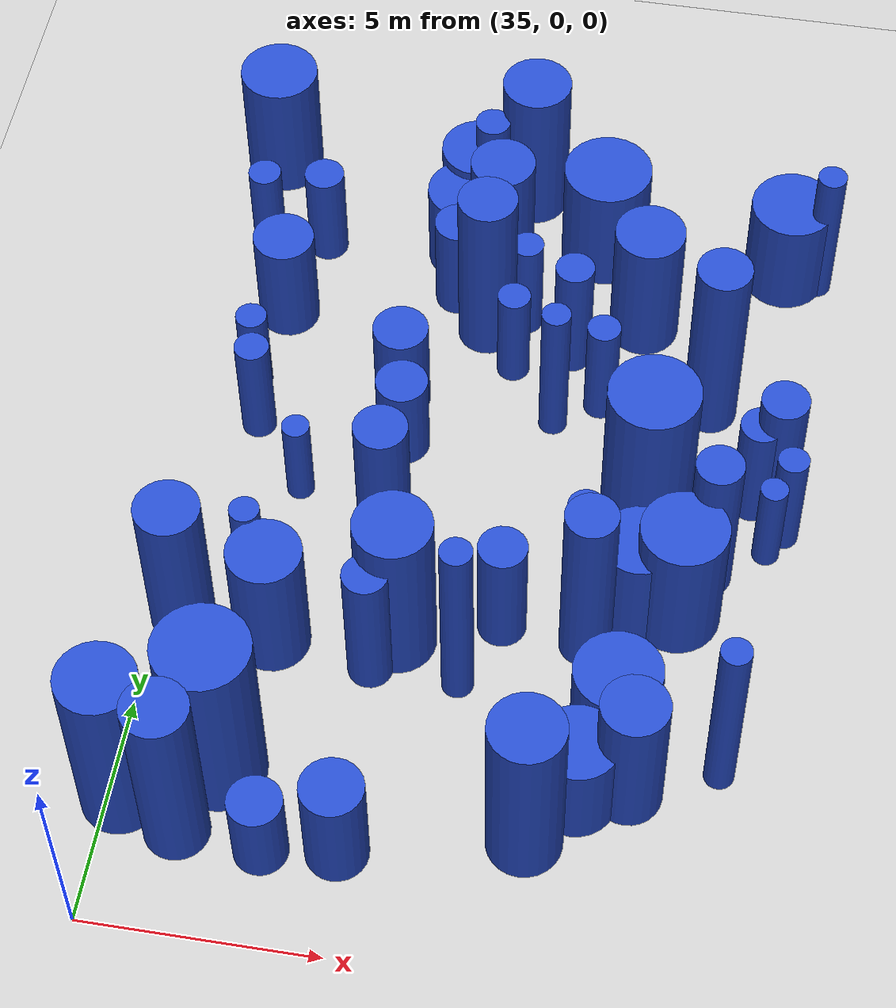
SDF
<sdf version="1.6">
 <world name="default">
  <model name="ground_plane">
   <static>1</static>
   <link name="link">
    <collision name="collision">
     <geometry><plane><normal>0 0 1</normal><size>100 100</size></plane></geometry>
     <surface><friction><ode><mu>100</mu><mu2>50</mu2></ode></friction></surface>
    </collision>
    <visual name="visual">
     <cast_shadows>0</cast_shadows>
     <geometry><plane><normal>0 0 1</normal><size>100 100</size></plane></geometry>
     <material>
      <script><uri>file://media/materials/scripts/gazebo.material</uri><name>Gazebo/Grey</name></script>
     </material>
    </visual>
   </link>
  </model>
  <model name="4">
   <static>0</static>
   <link name="link">
    <inertial>
     <mass>2</mass>
     <inertia><ixx>3.99199</ixx><ixy>0</ixy><ixz>0</ixz><iyy>3.99199</iyy><iyz>0</iyz><izz>0.466161</izz></inertia>
    </inertial>
    <collision name="collision">
     <geometry><cylinder><length>4.74905</length><radius>0.68276</radius></cylinder></geometry>
     <surface><contact><collide_without_contact>1</collide_without_contact></contact></surface>
    </collision>
    <visual name="visual">
     <geometry><cylinder><length>4.74905</length><radius>0.68276</radius></cylinder></geometry>
     <material>
      <script><uri>file://media/materials/scripts/gazebo.material</uri><name>Gazebo/Blue</name></script>
     </material>
    </visual>
    <gravity>0</gravity>
   </link>
   <pose>36.5583 2.27425 2.37452 0 -0 0</pose>
  </model>
  <model name="10">
   <static>0</static>
   <link name="link">
    <inertial>
     <mass>2</mass>
     <inertia>
      <ixx>0.892334</ixx>
      <ixy>0</ixy>
      <ixz>0</ixz>
      <iyy>0.892334</iyy>
      <iyz>0</iyz>
      <izz>0.0903005</izz>
     </inertia>
    </inertial>
    <collision name="collision">
     <geometry><cylinder><length>2.25457</length><radius>0.3005</radius></cylinder></geometry>
     <surface><contact><collide_without_contact>1</collide_without_contact></contact></surface>
    </collision>
    <visual name="visual">
     <geometry><cylinder><length>2.25457</length><radius>0.3005</radius></cylinder></geometry>
     <material>
      <script><uri>file://media/materials/scripts/gazebo.material</uri><name>Gazebo/Blue</name></script>
     </material>
    </visual>
    <gravity>0</gravity>
   </link>
   <pose>37.2761 10.9514 1.12729 0 -0 0</pose>
  </model>
  <model name="17">
   <static>0</static>
   <link name="link">
    <inertial>
     <mass>2</mass>
     <inertia><ixx>2.81626</ixx><ixy>0</ixy><ixz>0</ixz><iyy>2.81626</iyy><iyz>0</iyz><izz>0.482913</izz></inertia>
    </inertial>
    <collision name="collision">
     <geometry><cylinder><length>3.9305</length><radius>0.694919</radius></cylinder></geometry>
     <surface><contact><collide_without_contact>1</collide_without_contact></contact></surface>
    </collision>
    <visual name="visual">
     <geometry><cylinder><length>3.9305</length><radius>0.694919</radius></cylinder></geometry>
     <material>
      <script><uri>file://media/materials/scripts/gazebo.material</uri><name>Gazebo/Blue</name></script>
     </material>
    </visual>
    <gravity>0</gravity>
   </link>
   <pose>35.5044 7.28574 1.96525 0 -0 0</pose>
  </model>
  <model name="22">
   <static>0</static>
   <link name="link">
    <inertial>
     <mass>2</mass>
     <inertia><ixx>1.35363</ixx><ixy>0</ixy><ixz>0</ixz><iyy>1.35363</iyy><iyz>0</iyz><izz>0.709963</izz></inertia>
    </inertial>
    <collision name="collision">
     <geometry><cylinder><length>2.44783</length><radius>0.842593</radius></cylinder></geometry>
     <surface><contact><collide_without_contact>1</collide_without_contact></contact></surface>
    </collision>
    <visual name="visual">
     <geometry><cylinder><length>2.44783</length><radius>0.842593</radius></cylinder></geometry>
     <material>
      <script><uri>file://media/materials/scripts/gazebo.material</uri><name>Gazebo/Blue</name></script>
     </material>
    </visual>
    <gravity>0</gravity>
   </link>
   <pose>39.8297 19.3697 1.22391 0 -0 0</pose>
  </model>
  <model name="33">
   <static>0</static>
   <link name="link">
    <inertial>
     <mass>2</mass>
     <inertia><ixx>3.79607</ixx><ixy>0</ixy><ixz>0</ixz><iyy>3.79607</iyy><iyz>0</iyz><izz>0.307208</izz></inertia>
    </inertial>
    <collision name="collision">
     <geometry><cylinder><length>4.67491</length><radius>0.554264</radius></cylinder></geometry>
     <surface><contact><collide_without_contact>1</collide_without_contact></contact></surface>
    </collision>
    <visual name="visual">
     <geometry><cylinder><length>4.67491</length><radius>0.554264</radius></cylinder></geometry>
     <material>
      <script><uri>file://media/materials/scripts/gazebo.material</uri><name>Gazebo/Blue</name></script>
     </material>
    </visual>
    <gravity>0</gravity>
   </link>
   <pose>43.9821 7.96842 2.33746 0 -0 0</pose>
  </model>
  <model name="37">
   <static>0</static>
   <link name="link">
    <inertial>
     <mass>2</mass>
     <inertia><ixx>4.51841</ixx><ixy>0</ixy><ixz>0</ixz><iyy>4.51841</iyy><iyz>0</iyz><izz>0.944518</izz></inertia>
    </inertial>
    <collision name="collision">
     <geometry><cylinder><length>4.92716</length><radius>0.971863</radius></cylinder></geometry>
     <surface><contact><collide_without_contact>1</collide_without_contact></contact></surface>
    </collision>
    <visual name="visual">
     <geometry><cylinder><length>4.92716</length><radius>0.971863</radius></cylinder></geometry>
     <material>
      <script><uri>file://media/materials/scripts/gazebo.material</uri><name>Gazebo/Blue</name></script>
     </material>
    </visual>
    <gravity>0</gravity>
   </link>
   <pose>44.825 11.0247 2.46358 0 -0 0</pose>
  </model>
  <model name="40">
   <static>0</static>
   <link name="link">
    <inertial>
     <mass>2</mass>
     <inertia><ixx>4.04443</ixx><ixy>0</ixy><ixz>0</ixz><iyy>4.04443</iyy><iyz>0</iyz><izz>0.995933</izz></inertia>
    </inertial>
    <collision name="collision">
     <geometry><cylinder><length>4.61289</length><radius>0.997965</radius></cylinder></geometry>
     <surface><contact><collide_without_contact>1</collide_without_contact></contact></surface>
    </collision>
    <visual name="visual">
     <geometry><cylinder><length>4.61289</length><radius>0.997965</radius></cylinder></geometry>
     <material>
      <script><uri>file://media/materials/scripts/gazebo.material</uri><name>Gazebo/Blue</name></script>
     </material>
    </visual>
    <gravity>0</gravity>
   </link>
   <pose>37.0797 3.78821 2.30645 0 -0 0</pose>
  </model>
  <model name="45">
   <static>0</static>
   <link name="link">
    <inertial>
     <mass>2</mass>
     <inertia><ixx>1.36639</ixx><ixy>0</ixy><ixz>0</ixz><iyy>1.36639</iyy><iyz>0</iyz><izz>0.427302</izz></inertia>
    </inertial>
    <collision name="collision">
     <geometry><cylinder><length>2.62991</length><radius>0.653683</radius></cylinder></geometry>
     <surface><contact><collide_without_contact>1</collide_without_contact></contact></surface>
    </collision>
    <visual name="visual">
     <geometry><cylinder><length>2.62991</length><radius>0.653683</radius></cylinder></geometry>
     <material>
      <script><uri>file://media/materials/scripts/gazebo.material</uri><name>Gazebo/Blue</name></script>
     </material>
    </visual>
    <gravity>0</gravity>
   </link>
   <pose>39.8121 2.31165 1.31496 0 -0 0</pose>
  </model>
  <model name="50">
   <static>0</static>
   <link name="link">
    <inertial>
     <mass>2</mass>
     <inertia>
      <ixx>0.992342</ixx>
      <ixy>0</ixy>
      <ixz>0</ixz>
      <iyy>0.992342</iyy>
      <iyz>0</iyz>
      <izz>0.0875629</izz>
     </inertia>
    </inertial>
    <collision name="collision">
     <geometry><cylinder><length>2.38566</length><radius>0.29591</radius></cylinder></geometry>
     <surface><contact><collide_without_contact>1</collide_without_contact></contact></surface>
    </collision>
    <visual name="visual">
     <geometry><cylinder><length>2.38566</length><radius>0.29591</radius></cylinder></geometry>
     <material>
      <script><uri>file://media/materials/scripts/gazebo.material</uri><name>Gazebo/Blue</name></script>
     </material>
    </visual>
    <gravity>0</gravity>
   </link>
   <pose>47.4918 10.8681 1.19283 0 -0 0</pose>
  </model>
  <model name="55">
   <static>0</static>
   <link name="link">
    <inertial>
     <mass>2</mass>
     <inertia><ixx>1.92255</ixx><ixy>0</ixy><ixz>0</ixz><iyy>1.92255</iyy><iyz>0</iyz><izz>0.101941</izz></inertia>
    </inertial>
    <collision name="collision">
     <geometry><cylinder><length>3.35104</length><radius>0.319282</radius></cylinder></geometry>
     <surface><contact><collide_without_contact>1</collide_without_contact></contact></surface>
    </collision>
    <visual name="visual">
     <geometry><cylinder><length>3.35104</length><radius>0.319282</radius></cylinder></geometry>
     <material>
      <script><uri>file://media/materials/scripts/gazebo.material</uri><name>Gazebo/Blue</name></script>
     </material>
    </visual>
    <gravity>0</gravity>
   </link>
   <pose>36.9158 7.90245 1.67552 0 -0 0</pose>
  </model>
  <model name="71">
   <static>0</static>
   <link name="link">
    <inertial>
     <mass>2</mass>
     <inertia><ixx>1.48642</ixx><ixy>0</ixy><ixz>0</ixz><iyy>1.48642</iyy><iyz>0</iyz><izz>0.886168</izz></inertia>
    </inertial>
    <collision name="collision">
     <geometry><cylinder><length>2.50201</length><radius>0.941365</radius></cylinder></geometry>
     <surface><contact><collide_without_contact>1</collide_without_contact></contact></surface>
    </collision>
    <visual name="visual">
     <geometry><cylinder><length>2.50201</length><radius>0.941365</radius></cylinder></geometry>
     <material>
      <script><uri>file://media/materials/scripts/gazebo.material</uri><name>Gazebo/Blue</name></script>
     </material>
    </visual>
    <gravity>0</gravity>
   </link>
   <pose>47.1391 18.75 1.251 0 -0 0</pose>
  </model>
  <model name="77">
   <static>0</static>
   <link name="link">
    <inertial>
     <mass>2</mass>
     <inertia><ixx>2.23167</ixx><ixy>0</ixy><ixz>0</ixz><iyy>2.23167</iyy><iyz>0</iyz><izz>0.266125</izz></inertia>
    </inertial>
    <collision name="collision">
     <geometry><cylinder><length>3.54847</length><radius>0.515873</radius></cylinder></geometry>
     <surface><contact><collide_without_contact>1</collide_without_contact></contact></surface>
    </collision>
    <visual name="visual">
     <geometry><cylinder><length>3.54847</length><radius>0.515873</radius></cylinder></geometry>
     <material>
      <script><uri>file://media/materials/scripts/gazebo.material</uri><name>Gazebo/Blue</name></script>
     </material>
    </visual>
    <gravity>0</gravity>
   </link>
   <pose>47.4817 12.3314 1.77423 0 -0 0</pose>
  </model>
  <model name="84">
   <static>0</static>
   <link name="link">
    <inertial>
     <mass>2</mass>
     <inertia><ixx>1.69422</ixx><ixy>0</ixy><ixz>0</ixz><iyy>1.69422</iyy><iyz>0</iyz><izz>0.186566</izz></inertia>
    </inertial>
    <collision name="collision">
     <geometry><cylinder><length>3.09929</length><radius>0.431933</radius></cylinder></geometry>
     <surface><contact><collide_without_contact>1</collide_without_contact></contact></surface>
    </collision>
    <visual name="visual">
     <geometry><cylinder><length>3.09929</length><radius>0.431933</radius></cylinder></geometry>
     <material>
      <script><uri>file://media/materials/scripts/gazebo.material</uri><name>Gazebo/Blue</name></script>
     </material>
    </visual>
    <gravity>0</gravity>
   </link>
   <pose>42.5989 15.5785 1.54964 0 -0 0</pose>
  </model>
  <model name="86">
   <static>0</static>
   <link name="link">
    <inertial>
     <mass>2</mass>
     <inertia><ixx>1.2636</ixx><ixy>0</ixy><ixz>0</ixz><iyy>1.2636</iyy><iyz>0</iyz><izz>0.128524</izz></inertia>
    </inertial>
    <collision name="collision">
     <geometry><cylinder><length>2.68254</length><radius>0.358502</radius></cylinder></geometry>
     <surface><contact><collide_without_contact>1</collide_without_contact></contact></surface>
    </collision>
    <visual name="visual">
     <geometry><cylinder><length>2.68254</length><radius>0.358502</radius></cylinder></geometry>
     <material>
      <script><uri>file://media/materials/scripts/gazebo.material</uri><name>Gazebo/Blue</name></script>
     </material>
    </visual>
    <gravity>0</gravity>
   </link>
   <pose>41.425 16.4363 1.34127 0 -0 0</pose>
  </model>
  <model name="99">
   <static>0</static>
   <link name="link">
    <inertial>
     <mass>2</mass>
     <inertia><ixx>3.32285</ixx><ixy>0</ixy><ixz>0</ixz><iyy>3.32285</iyy><iyz>0</iyz><izz>0.693865</izz></inertia>
    </inertial>
    <collision name="collision">
     <geometry><cylinder><length>4.22557</length><radius>0.832985</radius></cylinder></geometry>
     <surface><contact><collide_without_contact>1</collide_without_contact></contact></surface>
    </collision>
    <visual name="visual">
     <geometry><cylinder><length>4.22557</length><radius>0.832985</radius></cylinder></geometry>
     <material>
      <script><uri>file://media/materials/scripts/gazebo.material</uri><name>Gazebo/Blue</name></script>
     </material>
    </visual>
    <gravity>0</gravity>
   </link>
   <pose>40.0849 7.42865 2.11279 0 -0 0</pose>
  </model>
  <model name="105">
   <static>0</static>
   <link name="link">
    <inertial>
     <mass>2</mass>
     <inertia><ixx>3.18059</ixx><ixy>0</ixy><ixz>0</ixz><iyy>3.18059</iyy><iyz>0</iyz><izz>0.147902</izz></inertia>
    </inertial>
    <collision name="collision">
     <geometry><cylinder><length>4.31739</length><radius>0.384581</radius></cylinder></geometry>
     <surface><contact><collide_without_contact>1</collide_without_contact></contact></surface>
    </collision>
    <visual name="visual">
     <geometry><cylinder><length>4.31739</length><radius>0.384581</radius></cylinder></geometry>
     <material>
      <script><uri>file://media/materials/scripts/gazebo.material</uri><name>Gazebo/Blue</name></script>
     </material>
    </visual>
    <gravity>0</gravity>
   </link>
   <pose>43.8154 8.45253 2.15869 0 -0 0</pose>
  </model>
  <model name="106">
   <static>0</static>
   <link name="link">
    <inertial>
     <mass>2</mass>
     <inertia><ixx>1.19386</ixx><ixy>0</ixy><ixz>0</ixz><iyy>1.19386</iyy><iyz>0</iyz><izz>0.72502</izz></inertia>
    </inertial>
    <collision name="collision">
     <geometry><cylinder><length>2.23341</length><radius>0.851481</radius></cylinder></geometry>
     <surface><contact><collide_without_contact>1</collide_without_contact></contact></surface>
    </collision>
    <visual name="visual">
     <geometry><cylinder><length>2.23341</length><radius>0.851481</radius></cylinder></geometry>
     <material>
      <script><uri>file://media/materials/scripts/gazebo.material</uri><name>Gazebo/Blue</name></script>
     </material>
    </visual>
    <gravity>0</gravity>
   </link>
   <pose>39.7044 18.2429 1.1167 0 -0 0</pose>
  </model>
  <model name="117">
   <static>0</static>
   <link name="link">
    <inertial>
     <mass>2</mass>
     <inertia><ixx>1.92344</ixx><ixy>0</ixy><ixz>0</ixz><iyy>1.92344</iyy><iyz>0</iyz><izz>0.539178</izz></inertia>
    </inertial>
    <collision name="collision">
     <geometry><cylinder><length>3.1501</length><radius>0.734287</radius></cylinder></geometry>
     <surface><contact><collide_without_contact>1</collide_without_contact></contact></surface>
    </collision>
    <visual name="visual">
     <geometry><cylinder><length>3.1501</length><radius>0.734287</radius></cylinder></geometry>
     <material>
      <script><uri>file://media/materials/scripts/gazebo.material</uri><name>Gazebo/Blue</name></script>
     </material>
    </visual>
    <gravity>0</gravity>
   </link>
   <pose>40.5549 18.3525 1.57505 0 -0 0</pose>
  </model>
  <model name="121">
   <static>0</static>
   <link name="link">
    <inertial>
     <mass>2</mass>
     <inertia><ixx>4.1766</ixx><ixy>0</ixy><ixz>0</ixz><iyy>4.1766</iyy><iyz>0</iyz><izz>0.356633</izz></inertia>
    </inertial>
    <collision name="collision">
     <geometry><cylinder><length>4.89793</length><radius>0.597187</radius></cylinder></geometry>
     <surface><contact><collide_without_contact>1</collide_without_contact></contact></surface>
    </collision>
    <visual name="visual">
     <geometry><cylinder><length>4.89793</length><radius>0.597187</radius></cylinder></geometry>
     <material>
      <script><uri>file://media/materials/scripts/gazebo.material</uri><name>Gazebo/Blue</name></script>
     </material>
    </visual>
    <gravity>0</gravity>
   </link>
   <pose>45.871 14.5136 2.44896 0 -0 0</pose>
  </model>
  <model name="128">
   <static>0</static>
   <link name="link">
    <inertial>
     <mass>2</mass>
     <inertia>
      <ixx>0.991401</ixx>
      <ixy>0</ixy>
      <ixz>0</ixz>
      <iyy>0.991401</iyy>
      <iyz>0</iyz>
      <izz>0.585978</izz>
     </inertia>
    </inertial>
    <collision name="collision">
     <geometry><cylinder><length>2.04706</length><radius>0.765492</radius></cylinder></geometry>
     <surface><contact><collide_without_contact>1</collide_without_contact></contact></surface>
    </collision>
    <visual name="visual">
     <geometry><cylinder><length>2.04706</length><radius>0.765492</radius></cylinder></geometry>
     <material>
      <script><uri>file://media/materials/scripts/gazebo.material</uri><name>Gazebo/Blue</name></script>
     </material>
    </visual>
    <gravity>0</gravity>
   </link>
   <pose>47.1565 19.0948 1.02353 0 -0 0</pose>
  </model>
  <model name="146">
   <static>0</static>
   <link name="link">
    <inertial>
     <mass>2</mass>
     <inertia><ixx>2.02122</ixx><ixy>0</ixy><ixz>0</ixz><iyy>2.02122</iyy><iyz>0</iyz><izz>0.786056</izz></inertia>
    </inertial>
    <collision name="collision">
     <geometry><cylinder><length>3.12556</length><radius>0.886598</radius></cylinder></geometry>
     <surface><contact><collide_without_contact>1</collide_without_contact></contact></surface>
    </collision>
    <visual name="visual">
     <geometry><cylinder><length>3.12556</length><radius>0.886598</radius></cylinder></geometry>
     <material>
      <script><uri>file://media/materials/scripts/gazebo.material</uri><name>Gazebo/Blue</name></script>
     </material>
    </visual>
    <gravity>0</gravity>
   </link>
   <pose>34.9653 20.3721 1.56278 0 -0 0</pose>
  </model>
  <model name="147">
   <static>0</static>
   <link name="link">
    <inertial>
     <mass>2</mass>
     <inertia><ixx>2.18693</ixx><ixy>0</ixy><ixz>0</ixz><iyy>2.18693</iyy><iyz>0</iyz><izz>0.85686</izz></inertia>
    </inertial>
    <collision name="collision">
     <geometry><cylinder><length>3.24823</length><radius>0.925667</radius></cylinder></geometry>
     <surface><contact><collide_without_contact>1</collide_without_contact></contact></surface>
    </collision>
    <visual name="visual">
     <geometry><cylinder><length>3.24823</length><radius>0.925667</radius></cylinder></geometry>
     <material>
      <script><uri>file://media/materials/scripts/gazebo.material</uri><name>Gazebo/Blue</name></script>
     </material>
    </visual>
    <gravity>0</gravity>
   </link>
   <pose>45.791 8.96886 1.62412 0 -0 0</pose>
  </model>
  <model name="148">
   <static>0</static>
   <link name="link">
    <inertial>
     <mass>2</mass>
     <inertia><ixx>1.3282</ixx><ixy>0</ixy><ixz>0</ixz><iyy>1.3282</iyy><iyz>0</iyz><izz>0.144223</izz></inertia>
    </inertial>
    <collision name="collision">
     <geometry><cylinder><length>2.74527</length><radius>0.379767</radius></cylinder></geometry>
     <surface><contact><collide_without_contact>1</collide_without_contact></contact></surface>
    </collision>
    <visual name="visual">
     <geometry><cylinder><length>2.74527</length><radius>0.379767</radius></cylinder></geometry>
     <material>
      <script><uri>file://media/materials/scripts/gazebo.material</uri><name>Gazebo/Blue</name></script>
     </material>
    </visual>
    <gravity>0</gravity>
   </link>
   <pose>36.0032 12.5367 1.37264 0 -0 0</pose>
  </model>
  <model name="169">
   <static>0</static>
   <link name="link">
    <inertial>
     <mass>2</mass>
     <inertia><ixx>1.56247</ixx><ixy>0</ixy><ixz>0</ixz><iyy>1.56247</iyy><iyz>0</iyz><izz>0.271395</izz></inertia>
    </inertial>
    <collision name="collision">
     <geometry><cylinder><length>2.92585</length><radius>0.520956</radius></cylinder></geometry>
     <surface><contact><collide_without_contact>1</collide_without_contact></contact></surface>
    </collision>
    <visual name="visual">
     <geometry><cylinder><length>2.92585</length><radius>0.520956</radius></cylinder></geometry>
     <material>
      <script><uri>file://media/materials/scripts/gazebo.material</uri><name>Gazebo/Blue</name></script>
     </material>
    </visual>
    <gravity>0</gravity>
   </link>
   <pose>42.1928 8.1323 1.46293 0 -0 0</pose>
  </model>
  <model name="183">
   <static>0</static>
   <link name="link">
    <inertial>
     <mass>2</mass>
     <inertia><ixx>1.46474</ixx><ixy>0</ixy><ixz>0</ixz><iyy>1.46474</iyy><iyz>0</iyz><izz>0.213854</izz></inertia>
    </inertial>
    <collision name="collision">
     <geometry><cylinder><length>2.85428</length><radius>0.462444</radius></cylinder></geometry>
     <surface><contact><collide_without_contact>1</collide_without_contact></contact></surface>
    </collision>
    <visual name="visual">
     <geometry><cylinder><length>2.85428</length><radius>0.462444</radius></cylinder></geometry>
     <material>
      <script><uri>file://media/materials/scripts/gazebo.material</uri><name>Gazebo/Blue</name></script>
     </material>
    </visual>
    <gravity>0</gravity>
   </link>
   <pose>47.0695 12.1406 1.42714 0 -0 0</pose>
  </model>
  <model name="190">
   <static>0</static>
   <link name="link">
    <inertial>
     <mass>2</mass>
     <inertia><ixx>2.8447</ixx><ixy>0</ixy><ixz>0</ixz><iyy>2.8447</iyy><iyz>0</iyz><izz>0.258092</izz></inertia>
    </inertial>
    <collision name="collision">
     <geometry><cylinder><length>4.03658</length><radius>0.508028</radius></cylinder></geometry>
     <surface><contact><collide_without_contact>1</collide_without_contact></contact></surface>
    </collision>
    <visual name="visual">
     <geometry><cylinder><length>4.03658</length><radius>0.508028</radius></cylinder></geometry>
     <material>
      <script><uri>file://media/materials/scripts/gazebo.material</uri><name>Gazebo/Blue</name></script>
     </material>
    </visual>
    <gravity>0</gravity>
   </link>
   <pose>46.3264 10.0792 2.01829 0 -0 0</pose>
  </model>
  <model name="196">
   <static>0</static>
   <link name="link">
    <inertial>
     <mass>2</mass>
     <inertia><ixx>2.9976</ixx><ixy>0</ixy><ixz>0</ixz><iyy>2.9976</iyy><iyz>0</iyz><izz>0.168273</izz></inertia>
    </inertial>
    <collision name="collision">
     <geometry><cylinder><length>4.181</length><radius>0.410211</radius></cylinder></geometry>
     <surface><contact><collide_without_contact>1</collide_without_contact></contact></surface>
    </collision>
    <visual name="visual">
     <geometry><cylinder><length>4.181</length><radius>0.410211</radius></cylinder></geometry>
     <material>
      <script><uri>file://media/materials/scripts/gazebo.material</uri><name>Gazebo/Blue</name></script>
     </material>
    </visual>
    <gravity>0</gravity>
   </link>
   <pose>45.7183 15.1108 2.0905 0 -0 0</pose>
  </model>
  <model name="205">
   <static>0</static>
   <link name="link">
    <inertial>
     <mass>2</mass>
     <inertia><ixx>1.39966</ixx><ixy>0</ixy><ixz>0</ixz><iyy>1.39966</iyy><iyz>0</iyz><izz>0.466148</izz></inertia>
    </inertial>
    <collision name="collision">
     <geometry><cylinder><length>2.64567</length><radius>0.68275</radius></cylinder></geometry>
     <surface><contact><collide_without_contact>1</collide_without_contact></contact></surface>
    </collision>
    <visual name="visual">
     <geometry><cylinder><length>2.64567</length><radius>0.68275</radius></cylinder></geometry>
     <material>
      <script><uri>file://media/materials/scripts/gazebo.material</uri><name>Gazebo/Blue</name></script>
     </material>
    </visual>
    <gravity>0</gravity>
   </link>
   <pose>36.006 15.8066 1.32283 0 -0 0</pose>
  </model>
  <model name="211">
   <static>0</static>
   <link name="link">
    <inertial>
     <mass>2</mass>
     <inertia><ixx>1.23461</ixx><ixy>0</ixy><ixz>0</ixz><iyy>1.23461</iyy><iyz>0</iyz><izz>0.299892</izz></inertia>
    </inertial>
    <collision name="collision">
     <geometry><cylinder><length>2.55107</length><radius>0.547624</radius></cylinder></geometry>
     <surface><contact><collide_without_contact>1</collide_without_contact></contact></surface>
    </collision>
    <visual name="visual">
     <geometry><cylinder><length>2.55107</length><radius>0.547624</radius></cylinder></geometry>
     <material>
      <script><uri>file://media/materials/scripts/gazebo.material</uri><name>Gazebo/Blue</name></script>
     </material>
    </visual>
    <gravity>0</gravity>
   </link>
   <pose>39.7834 16.9449 1.27554 0 -0 0</pose>
  </model>
  <model name="233">
   <static>0</static>
   <link name="link">
    <inertial>
     <mass>2</mass>
     <inertia><ixx>1.10912</ixx><ixy>0</ixy><ixz>0</ixz><iyy>1.10912</iyy><iyz>0</iyz><izz>0.203716</izz></inertia>
    </inertial>
    <collision name="collision">
     <geometry><cylinder><length>2.45836</length><radius>0.451349</radius></cylinder></geometry>
     <surface><contact><collide_without_contact>1</collide_without_contact></contact></surface>
    </collision>
    <visual name="visual">
     <geometry><cylinder><length>2.45836</length><radius>0.451349</radius></cylinder></geometry>
     <material>
      <script><uri>file://media/materials/scripts/gazebo.material</uri><name>Gazebo/Blue</name></script>
     </material>
    </visual>
    <gravity>0</gravity>
   </link>
   <pose>36.4867 17.9795 1.22918 0 -0 0</pose>
  </model>
  <model name="250">
   <static>0</static>
   <link name="link">
    <inertial>
     <mass>2</mass>
     <inertia><ixx>1.45648</ixx><ixy>0</ixy><ixz>0</ixz><iyy>1.45648</iyy><iyz>0</iyz><izz>0.724598</izz></inertia>
    </inertial>
    <collision name="collision">
     <geometry><cylinder><length>2.56224</length><radius>0.851233</radius></cylinder></geometry>
     <surface><contact><collide_without_contact>1</collide_without_contact></contact></surface>
    </collision>
    <visual name="visual">
     <geometry><cylinder><length>2.56224</length><radius>0.851233</radius></cylinder></geometry>
     <material>
      <script><uri>file://media/materials/scripts/gazebo.material</uri><name>Gazebo/Blue</name></script>
     </material>
    </visual>
    <gravity>0</gravity>
   </link>
   <pose>44.9064 9.0153 1.28112 0 -0 0</pose>
  </model>
  <model name="256">
   <static>0</static>
   <link name="link">
    <inertial>
     <mass>2</mass>
     <inertia><ixx>3.76033</ixx><ixy>0</ixy><ixz>0</ixz><iyy>3.76033</iyy><iyz>0</iyz><izz>0.101327</izz></inertia>
    </inertial>
    <collision name="collision">
     <geometry><cylinder><length>4.71784</length><radius>0.318319</radius></cylinder></geometry>
     <surface><contact><collide_without_contact>1</collide_without_contact></contact></surface>
    </collision>
    <visual name="visual">
     <geometry><cylinder><length>4.71784</length><radius>0.318319</radius></cylinder></geometry>
     <material>
      <script><uri>file://media/materials/scripts/gazebo.material</uri><name>Gazebo/Blue</name></script>
     </material>
    </visual>
    <gravity>0</gravity>
   </link>
   <pose>47.1093 5.28373 2.35892 0 -0 0</pose>
  </model>
  <model name="267">
   <static>0</static>
   <link name="link">
    <inertial>
     <mass>2</mass>
     <inertia><ixx>1.83224</ixx><ixy>0</ixy><ixz>0</ixz><iyy>1.83224</iyy><iyz>0</iyz><izz>0.99729</izz></inertia>
    </inertial>
    <collision name="collision">
     <geometry><cylinder><length>2.8287</length><radius>0.998644</radius></cylinder></geometry>
     <surface><contact><collide_without_contact>1</collide_without_contact></contact></surface>
    </collision>
    <visual name="visual">
     <geometry><cylinder><length>2.8287</length><radius>0.998644</radius></cylinder></geometry>
     <material>
      <script><uri>file://media/materials/scripts/gazebo.material</uri><name>Gazebo/Blue</name></script>
     </material>
    </visual>
    <gravity>0</gravity>
   </link>
   <pose>42.8965 18.8281 1.41435 0 -0 0</pose>
  </model>
  <model name="286">
   <static>0</static>
   <link name="link">
    <inertial>
     <mass>2</mass>
     <inertia><ixx>3.5814</ixx><ixy>0</ixy><ixz>0</ixz><iyy>3.5814</iyy><iyz>0</iyz><izz>0.435932</izz></inertia>
    </inertial>
    <collision name="collision">
     <geometry><cylinder><length>4.49228</length><radius>0.660252</radius></cylinder></geometry>
     <surface><contact><collide_without_contact>1</collide_without_contact></contact></surface>
    </collision>
    <visual name="visual">
     <geometry><cylinder><length>4.49228</length><radius>0.660252</radius></cylinder></geometry>
     <material>
      <script><uri>file://media/materials/scripts/gazebo.material</uri><name>Gazebo/Blue</name></script>
     </material>
    </visual>
    <gravity>0</gravity>
   </link>
   <pose>40.5875 16.004 2.24614 0 -0 0</pose>
  </model>
  <model name="289">
   <static>0</static>
   <link name="link">
    <inertial>
     <mass>2</mass>
     <inertia><ixx>2.81304</ixx><ixy>0</ixy><ixz>0</ixz><iyy>2.81304</iyy><iyz>0</iyz><izz>0.616209</izz></inertia>
    </inertial>
    <collision name="collision">
     <geometry><cylinder><length>3.8768</length><radius>0.78499</radius></cylinder></geometry>
     <surface><contact><collide_without_contact>1</collide_without_contact></contact></surface>
    </collision>
    <visual name="visual">
     <geometry><cylinder><length>3.8768</length><radius>0.78499</radius></cylinder></geometry>
     <material>
      <script><uri>file://media/materials/scripts/gazebo.material</uri><name>Gazebo/Blue</name></script>
     </material>
    </visual>
    <gravity>0</gravity>
   </link>
   <pose>41.0386 20.2257 1.9384 0 -0 0</pose>
  </model>
  <model name="290">
   <static>0</static>
   <link name="link">
    <inertial>
     <mass>2</mass>
     <inertia><ixx>1.14628</ixx><ixy>0</ixy><ixz>0</ixz><iyy>1.14628</iyy><iyz>0</iyz><izz>0.134375</izz></inertia>
    </inertial>
    <collision name="collision">
     <geometry><cylinder><length>2.54451</length><radius>0.366572</radius></cylinder></geometry>
     <surface><contact><collide_without_contact>1</collide_without_contact></contact></surface>
    </collision>
    <visual name="visual">
     <geometry><cylinder><length>2.54451</length><radius>0.366572</radius></cylinder></geometry>
     <material>
      <script><uri>file://media/materials/scripts/gazebo.material</uri><name>Gazebo/Blue</name></script>
     </material>
    </visual>
    <gravity>0</gravity>
   </link>
   <pose>41.3393 15.0324 1.27226 0 -0 0</pose>
  </model>
  <model name="294">
   <static>0</static>
   <link name="link">
    <inertial>
     <mass>2</mass>
     <inertia><ixx>2.27211</ixx><ixy>0</ixy><ixz>0</ixz><iyy>2.27211</iyy><iyz>0</iyz><izz>0.495287</izz></inertia>
    </inertial>
    <collision name="collision">
     <geometry><cylinder><length>3.48522</length><radius>0.703767</radius></cylinder></geometry>
     <surface><contact><collide_without_contact>1</collide_without_contact></contact></surface>
    </collision>
    <visual name="visual">
     <geometry><cylinder><length>3.48522</length><radius>0.703767</radius></cylinder></geometry>
     <material>
      <script><uri>file://media/materials/scripts/gazebo.material</uri><name>Gazebo/Blue</name></script>
     </material>
    </visual>
    <gravity>0</gravity>
   </link>
   <pose>45.3454 4.54404 1.74261 0 -0 0</pose>
  </model>
  <model name="301">
   <static>0</static>
   <link name="link">
    <inertial>
     <mass>2</mass>
     <inertia><ixx>1.26487</ixx><ixy>0</ixy><ixz>0</ixz><iyy>1.26487</iyy><iyz>0</iyz><izz>0.136388</izz></inertia>
    </inertial>
    <collision name="collision">
     <geometry><cylinder><length>2.67956</length><radius>0.369307</radius></cylinder></geometry>
     <surface><contact><collide_without_contact>1</collide_without_contact></contact></surface>
    </collision>
    <visual name="visual">
     <geometry><cylinder><length>2.67956</length><radius>0.369307</radius></cylinder></geometry>
     <material>
      <script><uri>file://media/materials/scripts/gazebo.material</uri><name>Gazebo/Blue</name></script>
     </material>
    </visual>
    <gravity>0</gravity>
   </link>
   <pose>35.1933 17.607 1.33978 0 -0 0</pose>
  </model>
  <model name="313">
   <static>0</static>
   <link name="link">
    <inertial>
     <mass>2</mass>
     <inertia><ixx>2.80276</ixx><ixy>0</ixy><ixz>0</ixz><iyy>2.80276</iyy><iyz>0</iyz><izz>0.334165</izz></inertia>
    </inertial>
    <collision name="collision">
     <geometry><cylinder><length>3.97669</length><radius>0.57807</radius></cylinder></geometry>
     <surface><contact><collide_without_contact>1</collide_without_contact></contact></surface>
    </collision>
    <visual name="visual">
     <geometry><cylinder><length>3.97669</length><radius>0.57807</radius></cylinder></geometry>
     <material>
      <script><uri>file://media/materials/scripts/gazebo.material</uri><name>Gazebo/Blue</name></script>
     </material>
    </visual>
    <gravity>0</gravity>
   </link>
   <pose>39.3565 9.94623 1.98835 0 -0 0</pose>
  </model>
  <model name="317">
   <static>0</static>
   <link name="link">
    <inertial>
     <mass>2</mass>
     <inertia>
      <ixx>0.836713</ixx>
      <ixy>0</ixy>
      <ixz>0</ixz>
      <iyy>0.836713</iyy>
      <iyz>0</iyz>
      <izz>0.321219</izz>
     </inertia>
    </inertial>
    <collision name="collision">
     <geometry><cylinder><length>2.01411</length><radius>0.566762</radius></cylinder></geometry>
     <surface><contact><collide_without_contact>1</collide_without_contact></contact></surface>
    </collision>
    <visual name="visual">
     <geometry><cylinder><length>2.01411</length><radius>0.566762</radius></cylinder></geometry>
     <material>
      <script><uri>file://media/materials/scripts/gazebo.material</uri><name>Gazebo/Blue</name></script>
     </material>
    </visual>
    <gravity>0</gravity>
   </link>
   <pose>38.308 2.10471 1.00705 0 -0 0</pose>
  </model>
  <model name="318">
   <static>0</static>
   <link name="link">
    <inertial>
     <mass>2</mass>
     <inertia>
      <ixx>0.898275</ixx>
      <ixy>0</ixy>
      <ixz>0</ixz>
      <iyy>0.898275</iyy>
      <iyz>0</iyz>
      <izz>0.120718</izz>
     </inertia>
    </inertial>
    <collision name="collision">
     <geometry><cylinder><length>2.24221</length><radius>0.347444</radius></cylinder></geometry>
     <surface><contact><collide_without_contact>1</collide_without_contact></contact></surface>
    </collision>
    <visual name="visual">
     <geometry><cylinder><length>2.24221</length><radius>0.347444</radius></cylinder></geometry>
     <material>
      <script><uri>file://media/materials/scripts/gazebo.material</uri><name>Gazebo/Blue</name></script>
     </material>
    </visual>
    <gravity>0</gravity>
   </link>
   <pose>35.6866 13.7754 1.1211 0 -0 0</pose>
  </model>
  <model name="327">
   <static>0</static>
   <link name="link">
    <inertial>
     <mass>2</mass>
     <inertia><ixx>2.14657</ixx><ixy>0</ixy><ixz>0</ixz><iyy>2.14657</iyy><iyz>0</iyz><izz>0.615443</izz></inertia>
    </inertial>
    <collision name="collision">
     <geometry><cylinder><length>3.32161</length><radius>0.784502</radius></cylinder></geometry>
     <surface><contact><collide_without_contact>1</collide_without_contact></contact></surface>
    </collision>
    <visual name="visual">
     <geometry><cylinder><length>3.32161</length><radius>0.784502</radius></cylinder></geometry>
     <material>
      <script><uri>file://media/materials/scripts/gazebo.material</uri><name>Gazebo/Blue</name></script>
     </material>
    </visual>
    <gravity>0</gravity>
   </link>
   <pose>44.1083 16.6817 1.6608 0 -0 0</pose>
  </model>
  <model name="328">
   <static>0</static>
   <link name="link">
    <inertial>
     <mass>2</mass>
     <inertia><ixx>1.2377</ixx><ixy>0</ixy><ixz>0</ixz><iyy>1.2377</iyy><iyz>0</iyz><izz>0.723143</izz></inertia>
    </inertial>
    <collision name="collision">
     <geometry><cylinder><length>2.29276</length><radius>0.850378</radius></cylinder></geometry>
     <surface><contact><collide_without_contact>1</collide_without_contact></contact></surface>
    </collision>
    <visual name="visual">
     <geometry><cylinder><length>2.29276</length><radius>0.850378</radius></cylinder></geometry>
     <material>
      <script><uri>file://media/materials/scripts/gazebo.material</uri><name>Gazebo/Blue</name></script>
     </material>
    </visual>
    <gravity>0</gravity>
   </link>
   <pose>44.3169 4.26129 1.14638 0 -0 0</pose>
  </model>
  <model name="341">
   <static>0</static>
   <link name="link">
    <inertial>
     <mass>2</mass>
     <inertia><ixx>1.34054</ixx><ixy>0</ixy><ixz>0</ixz><iyy>1.34054</iyy><iyz>0</iyz><izz>0.112763</izz></inertia>
    </inertial>
    <collision name="collision">
     <geometry><cylinder><length>2.77578</length><radius>0.335802</radius></cylinder></geometry>
     <surface><contact><collide_without_contact>1</collide_without_contact></contact></surface>
    </collision>
    <visual name="visual">
     <geometry><cylinder><length>2.77578</length><radius>0.335802</radius></cylinder></geometry>
     <material>
      <script><uri>file://media/materials/scripts/gazebo.material</uri><name>Gazebo/Blue</name></script>
     </material>
    </visual>
    <gravity>0</gravity>
   </link>
   <pose>47.808 11.3974 1.38789 0 -0 0</pose>
  </model>
  <model name="370">
   <static>0</static>
   <link name="link">
    <inertial>
     <mass>2</mass>
     <inertia><ixx>3.88651</ixx><ixy>0</ixy><ixz>0</ixz><iyy>3.88651</iyy><iyz>0</iyz><izz>0.676613</izz></inertia>
    </inertial>
    <collision name="collision">
     <geometry><cylinder><length>4.61402</length><radius>0.822565</radius></cylinder></geometry>
     <surface><contact><collide_without_contact>1</collide_without_contact></contact></surface>
    </collision>
    <visual name="visual">
     <geometry><cylinder><length>4.61402</length><radius>0.822565</radius></cylinder></geometry>
     <material>
      <script><uri>file://media/materials/scripts/gazebo.material</uri><name>Gazebo/Blue</name></script>
     </material>
    </visual>
    <gravity>0</gravity>
   </link>
   <pose>35.2845 2.79155 2.30701 0 -0 0</pose>
  </model>
  <model name="377">
   <static>0</static>
   <link name="link">
    <inertial>
     <mass>2</mass>
     <inertia><ixx>1.22688</ixx><ixy>0</ixy><ixz>0</ixz><iyy>1.22688</iyy><iyz>0</iyz><izz>0.867587</izz></inertia>
    </inertial>
    <collision name="collision">
     <geometry><cylinder><length>2.1814</length><radius>0.931444</radius></cylinder></geometry>
     <surface><contact><collide_without_contact>1</collide_without_contact></contact></surface>
    </collision>
    <visual name="visual">
     <geometry><cylinder><length>2.1814</length><radius>0.931444</radius></cylinder></geometry>
     <material>
      <script><uri>file://media/materials/scripts/gazebo.material</uri><name>Gazebo/Blue</name></script>
     </material>
    </visual>
    <gravity>0</gravity>
   </link>
   <pose>44.8631 6.08029 1.0907 0 -0 0</pose>
  </model>
  <model name="402">
   <static>0</static>
   <link name="link">
    <inertial>
     <mass>2</mass>
     <inertia><ixx>2.10515</ixx><ixy>0</ixy><ixz>0</ixz><iyy>2.10515</iyy><iyz>0</iyz><izz>0.630869</izz></inertia>
    </inertial>
    <collision name="collision">
     <geometry><cylinder><length>3.27694</length><radius>0.794273</radius></cylinder></geometry>
     <surface><contact><collide_without_contact>1</collide_without_contact></contact></surface>
    </collision>
    <visual name="visual">
     <geometry><cylinder><length>3.27694</length><radius>0.794273</radius></cylinder></geometry>
     <material>
      <script><uri>file://media/materials/scripts/gazebo.material</uri><name>Gazebo/Blue</name></script>
     </material>
    </visual>
    <gravity>0</gravity>
   </link>
   <pose>37.5074 7.00863 1.63847 0 -0 0</pose>
  </model>
  <model name="407">
   <static>0</static>
   <link name="link">
    <inertial>
     <mass>2</mass>
     <inertia><ixx>1.3261</ixx><ixy>0</ixy><ixz>0</ixz><iyy>1.3261</iyy><iyz>0</iyz><izz>0.135942</izz></inertia>
    </inertial>
    <collision name="collision">
     <geometry><cylinder><length>2.74751</length><radius>0.368703</radius></cylinder></geometry>
     <surface><contact><collide_without_contact>1</collide_without_contact></contact></surface>
    </collision>
    <visual name="visual">
     <geometry><cylinder><length>2.74751</length><radius>0.368703</radius></cylinder></geometry>
     <material>
      <script><uri>file://media/materials/scripts/gazebo.material</uri><name>Gazebo/Blue</name></script>
     </material>
    </visual>
    <gravity>0</gravity>
   </link>
   <pose>43.4275 14.2912 1.37375 0 -0 0</pose>
  </model>
  <model name="409">
   <static>0</static>
   <link name="link">
    <inertial>
     <mass>2</mass>
     <inertia><ixx>2.35471</ixx><ixy>0</ixy><ixz>0</ixz><iyy>2.35471</iyy><iyz>0</iyz><izz>0.104099</izz></inertia>
    </inertial>
    <collision name="collision">
     <geometry><cylinder><length>3.71698</length><radius>0.322644</radius></cylinder></geometry>
     <surface><contact><collide_without_contact>1</collide_without_contact></contact></surface>
    </collision>
    <visual name="visual">
     <geometry><cylinder><length>3.71698</length><radius>0.322644</radius></cylinder></geometry>
     <material>
      <script><uri>file://media/materials/scripts/gazebo.material</uri><name>Gazebo/Blue</name></script>
     </material>
    </visual>
    <gravity>0</gravity>
   </link>
   <pose>47.9067 18.592 1.85849 0 -0 0</pose>
  </model>
  <model name="413">
   <static>0</static>
   <link name="link">
    <inertial>
     <mass>2</mass>
     <inertia><ixx>1.22095</ixx><ixy>0</ixy><ixz>0</ixz><iyy>1.22095</iyy><iyz>0</iyz><izz>0.374717</izz></inertia>
    </inertial>
    <collision name="collision">
     <geometry><cylinder><length>2.49029</length><radius>0.612141</radius></cylinder></geometry>
     <surface><contact><collide_without_contact>1</collide_without_contact></contact></surface>
    </collision>
    <visual name="visual">
     <geometry><cylinder><length>2.49029</length><radius>0.612141</radius></cylinder></geometry>
     <material>
      <script><uri>file://media/materials/scripts/gazebo.material</uri><name>Gazebo/Blue</name></script>
     </material>
    </visual>
    <gravity>0</gravity>
   </link>
   <pose>39.0337 13.7746 1.24514 0 -0 0</pose>
  </model>
  <model name="415">
   <static>0</static>
   <link name="link">
    <inertial>
     <mass>2</mass>
     <inertia><ixx>2.16921</ixx><ixy>0</ixy><ixz>0</ixz><iyy>2.16921</iyy><iyz>0</iyz><izz>0.231039</izz></inertia>
    </inertial>
    <collision name="collision">
     <geometry><cylinder><length>3.51029</length><radius>0.480665</radius></cylinder></geometry>
     <surface><contact><collide_without_contact>1</collide_without_contact></contact></surface>
    </collision>
    <visual name="visual">
     <geometry><cylinder><length>3.51029</length><radius>0.480665</radius></cylinder></geometry>
     <material>
      <script><uri>file://media/materials/scripts/gazebo.material</uri><name>Gazebo/Blue</name></script>
     </material>
    </visual>
    <gravity>0</gravity>
   </link>
   <pose>39.6558 6.64025 1.75515 0 -0 0</pose>
  </model>
  <model name="445">
   <static>0</static>
   <link name="link">
    <inertial>
     <mass>2</mass>
     <inertia><ixx>2.46311</ixx><ixy>0</ixy><ixz>0</ixz><iyy>2.46311</iyy><iyz>0</iyz><izz>0.10123</izz></inertia>
    </inertial>
    <collision name="collision">
     <geometry><cylinder><length>3.8046</length><radius>0.318167</radius></cylinder></geometry>
     <surface><contact><collide_without_contact>1</collide_without_contact></contact></surface>
    </collision>
    <visual name="visual">
     <geometry><cylinder><length>3.8046</length><radius>0.318167</radius></cylinder></geometry>
     <material>
      <script><uri>file://media/materials/scripts/gazebo.material</uri><name>Gazebo/Blue</name></script>
     </material>
    </visual>
    <gravity>0</gravity>
   </link>
   <pose>42.4542 13.6289 1.9023 0 -0 0</pose>
  </model>
  <model name="456">
   <static>0</static>
   <link name="link">
    <inertial>
     <mass>2</mass>
     <inertia><ixx>3.63192</ixx><ixy>0</ixy><ixz>0</ixz><iyy>3.63192</iyy><iyz>0</iyz><izz>0.614112</izz></inertia>
    </inertial>
    <collision name="collision">
     <geometry><cylinder><length>4.46645</length><radius>0.783653</radius></cylinder></geometry>
     <surface><contact><collide_without_contact>1</collide_without_contact></contact></surface>
    </collision>
    <visual name="visual">
     <geometry><cylinder><length>4.46645</length><radius>0.783653</radius></cylinder></geometry>
     <material>
      <script><uri>file://media/materials/scripts/gazebo.material</uri><name>Gazebo/Blue</name></script>
     </material>
    </visual>
    <gravity>0</gravity>
   </link>
   <pose>43.4456 3.13648 2.23323 0 -0 0</pose>
  </model>
  <model name="470">
   <static>0</static>
   <link name="link">
    <inertial>
     <mass>2</mass>
     <inertia><ixx>1.68038</ixx><ixy>0</ixy><ixz>0</ixz><iyy>1.68038</iyy><iyz>0</iyz><izz>0.158826</izz></inertia>
    </inertial>
    <collision name="collision">
     <geometry><cylinder><length>3.09932</length><radius>0.39853</radius></cylinder></geometry>
     <surface><contact><collide_without_contact>1</collide_without_contact></contact></surface>
    </collision>
    <visual name="visual">
     <geometry><cylinder><length>3.09932</length><radius>0.39853</radius></cylinder></geometry>
     <material>
      <script><uri>file://media/materials/scripts/gazebo.material</uri><name>Gazebo/Blue</name></script>
     </material>
    </visual>
    <gravity>0</gravity>
   </link>
   <pose>40.124 19.6058 1.54966 0 -0 0</pose>
  </model>
  <model name="480">
   <static>0</static>
   <link name="link">
    <inertial>
     <mass>2</mass>
     <inertia><ixx>4.01449</ixx><ixy>0</ixy><ixz>0</ixz><iyy>4.01449</iyy><iyz>0</iyz><izz>0.115727</izz></inertia>
    </inertial>
    <collision name="collision">
     <geometry><cylinder><length>4.87234</length><radius>0.340186</radius></cylinder></geometry>
     <surface><contact><collide_without_contact>1</collide_without_contact></contact></surface>
    </collision>
    <visual name="visual">
     <geometry><cylinder><length>4.87234</length><radius>0.340186</radius></cylinder></geometry>
     <material>
      <script><uri>file://media/materials/scripts/gazebo.material</uri><name>Gazebo/Blue</name></script>
     </material>
    </visual>
    <gravity>0</gravity>
   </link>
   <pose>41.5138 6.55696 2.43617 0 -0 0</pose>
  </model>
  <model name="497">
   <static>0</static>
   <link name="link">
    <inertial>
     <mass>2</mass>
     <inertia>
      <ixx>0.997705</ixx>
      <ixy>0</ixy>
      <ixz>0</ixz>
      <iyy>0.997705</iyy>
      <iyz>0</iyz>
      <izz>0.329964</izz>
     </inertia>
    </inertial>
    <collision name="collision">
     <geometry><cylinder><length>2.23525</length><radius>0.574425</radius></cylinder></geometry>
     <surface><contact><collide_without_contact>1</collide_without_contact></contact></surface>
    </collision>
    <visual name="visual">
     <geometry><cylinder><length>2.23525</length><radius>0.574425</radius></cylinder></geometry>
     <material>
      <script><uri>file://media/materials/scripts/gazebo.material</uri><name>Gazebo/Blue</name></script>
     </material>
    </visual>
    <gravity>0</gravity>
   </link>
   <pose>39.2809 12.5295 1.11762 0 -0 0</pose>
  </model>
 </world>
</sdf>
